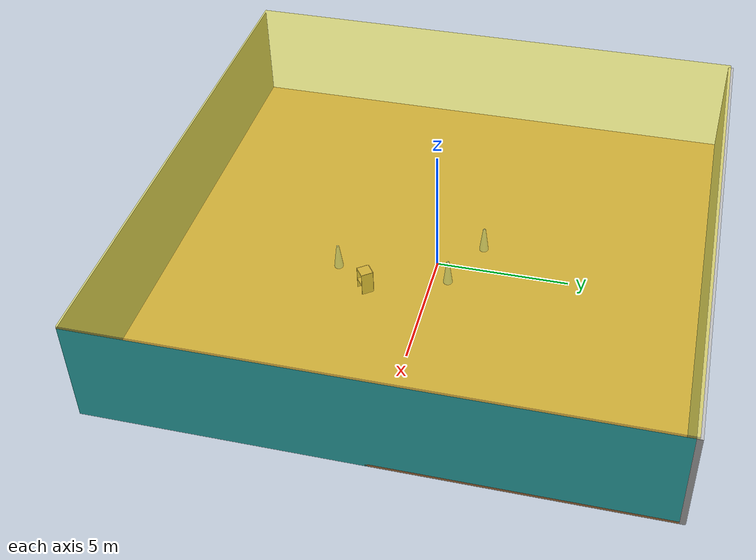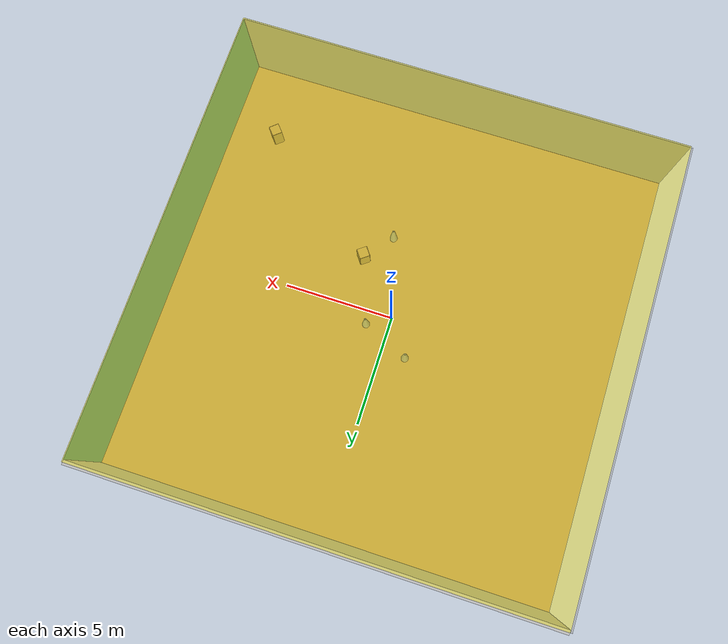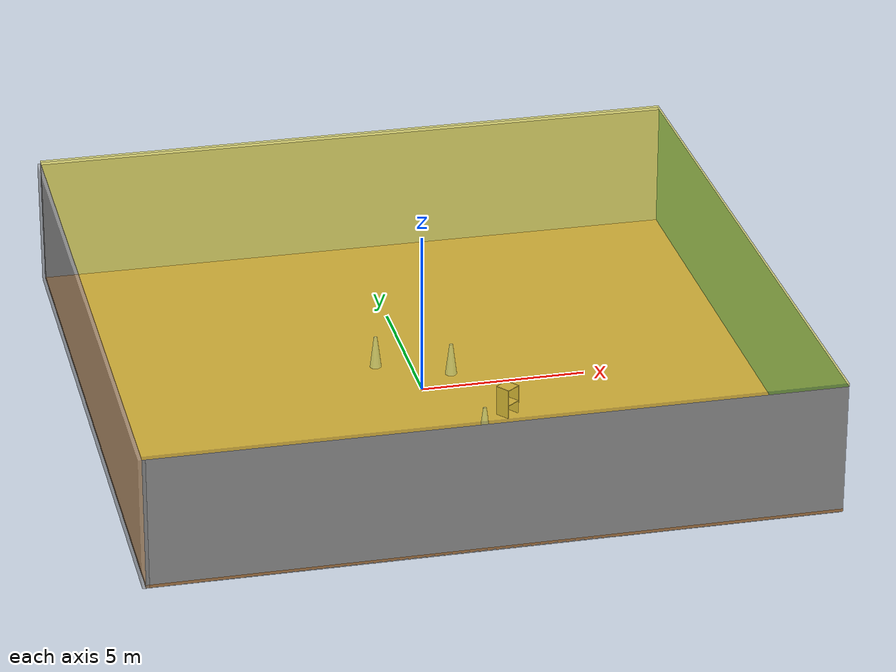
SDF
<sdf version="1.4">
 <world name="default">
  <physics type="ode">
   <max_step_size>0.001</max_step_size>
   <real_time_factor>1</real_time_factor>
   <real_time_update_rate>1000</real_time_update_rate>
   <gravity>0 0 -9.8</gravity>
  </physics>
  <scene><ambient>0.4 0.4 0.4 1</ambient><background>0.7 0.7 0.7 1</background><shadows>1</shadows></scene>
  <model name="Surrounding">
   <static>1</static>
   <link name="Ceiling">
    <collision name="Ceiling_Collision"><geometry><box><size>20 20 0.1</size></box></geometry></collision>
    <visual name="Ceiling_Visual">
     <geometry><box><size>20 20 0.1</size></box></geometry>
     <material>
      <script>
       <uri>file://media/materials/scripts/gazebo.material</uri>
       <name>Gazebo/YellowTransparent</name>
      </script>
     </material>
    </visual>
    <pose>0 0 4.05 0 0 0</pose>
   </link>
   <link name="Wall_South">
    <collision name="Wall_South_Collision">
     <geometry><box><size>20 0 4</size></box></geometry>
     <pose>0 0 2 0 -0 0</pose>
    </collision>
    <visual name="Wall_South_Visual">
     <pose>0 0 2 0 -0 0</pose>
     <geometry><box><size>20 0 4</size></box></geometry>
     <material>
      <script><uri>file://media/materials/scripts/gazebo.material</uri><name>Gazebo/GreyGradientSky</name></script>
     </material>
    </visual>
    <velocity_decay><linear>0</linear><angular>0</angular></velocity_decay>
    <pose>0 -10 0 0 -0 0</pose>
   </link>
   <link name="Wall_East">
    <collision name="Wall_21_Collision">
     <geometry><box><size>20 0 4</size></box></geometry>
     <pose>0 0 2 0 -0 0</pose>
    </collision>
    <visual name="Wall_21_Visual">
     <pose>0 0 2 0 -0 0</pose>
     <geometry><box><size>20 0 4</size></box></geometry>
     <material>
      <script><uri>file://media/materials/scripts/gazebo.material</uri><name>Gazebo/Turquoise</name></script>
     </material>
    </visual>
    <velocity_decay><linear>0</linear><angular>0</angular></velocity_decay>
    <pose>10 0 0 0 -0 1.5708</pose>
   </link>
   <link name="Wall_North">
    <collision name="Wall_22_Collision">
     <geometry><box><size>20 0.2 4</size></box></geometry>
     <pose>0 0 2 0 -0 0</pose>
    </collision>
    <visual name="Wall_22_Visual">
     <pose>0 0 2 0 -0 0</pose>
     <geometry><box><size>20 0.2 4</size></box></geometry>
     <material>
      <script><uri>file://media/materials/scripts/gazebo.material</uri><name>Gazebo/JointAnchor</name></script>
     </material>
    </visual>
    <velocity_decay><linear>0</linear><angular>0</angular></velocity_decay>
    <pose>0 10 0 0 -0 0</pose>
   </link>
   <link name="Wall_West">
    <collision name="Wall_23_Collision">
     <geometry><box><size>20 0.2 4</size></box></geometry>
     <pose>0 0 2 0 -0 0</pose>
    </collision>
    <visual name="Wall_23_Visual">
     <pose>0 0 2 0 -0 0</pose>
     <geometry><box><size>20 0.2 4</size></box></geometry>
     <material>
      <script><uri>file://media/materials/scripts/gazebo.material</uri><name>Gazebo/GreyTransparent</name></script>
     </material>
    </visual>
    <velocity_decay><linear>0</linear><angular>0</angular></velocity_decay>
    <pose>-10 0 0 0 0 -1.5708</pose>
   </link>
   <link name="Ground_link">
    <collision name="collision">
     <pose>0 0 .05 0 -0 0</pose>
     <geometry><box><size>20 20 0.1</size></box></geometry>
    </collision>
    <visual name="visual">
     <pose>0 0 .05 0 -0 0</pose>
     <geometry><box><size>20 20 0.1</size></box></geometry>
     <material>
      <script><uri>file://media/materials/scripts/gazebo.material</uri><name>Gazebo/WoodFloor</name></script>
     </material>
    </visual>
   </link>
   <static>1</static>
  </model>
  <spherical_coordinates>
   <surface_model>EARTH_WGS84</surface_model>
   <latitude_deg>0</latitude_deg>
   <longitude_deg>0</longitude_deg>
   <elevation>0</elevation>
   <heading_deg>0</heading_deg>
  </spherical_coordinates>
  <light name="lightball_0" type="diffuse">
   <diffuse>0.8 0.8 0.8 1</diffuse>
   <specular>0.2 0.2 0.2 1</specular>
   <attenuation>
    <range>100</range>
    <constant>0.7</constant>
    <linear>0.01</linear>
    <quadratic>0.001</quadratic>
   </attenuation>
   <direction>-0.5 0.1 -0.9</direction>
   <pose>2.52857925631 5.04661343804 2.74419844266 0 0 0</pose>
  </light>
  <light name="lightball_1" type="diffuse">
   <diffuse>0.8 0.8 0.8 1</diffuse>
   <specular>0.2 0.2 0.2 1</specular>
   <attenuation>
    <range>100</range>
    <constant>0.7</constant>
    <linear>0.01</linear>
    <quadratic>0.001</quadratic>
   </attenuation>
   <direction>-0.5 0.1 -0.9</direction>
   <pose>-2.8373993188 6.8671987612 2.30256610514 0 0 0</pose>
  </light>
  <light name="lightball_2" type="diffuse">
   <diffuse>0.8 0.8 0.8 1</diffuse>
   <specular>0.2 0.2 0.2 1</specular>
   <attenuation>
    <range>100</range>
    <constant>0.7</constant>
    <linear>0.01</linear>
    <quadratic>0.001</quadratic>
   </attenuation>
   <direction>-0.5 0.1 -0.9</direction>
   <pose>9.06190737568 -8.87202244169 3.48320149879 0 0 0</pose>
  </light>
  <light name="lightball_3" type="diffuse">
   <diffuse>0.8 0.8 0.8 1</diffuse>
   <specular>0.2 0.2 0.2 1</specular>
   <attenuation>
    <range>100</range>
    <constant>0.7</constant>
    <linear>0.01</linear>
    <quadratic>0.001</quadratic>
   </attenuation>
   <direction>-0.5 0.1 -0.9</direction>
   <pose>-3.2272082813 9.98150360751 1.58193659633 0 0 0</pose>
  </light>
  <light name="lightball_4" type="diffuse">
   <diffuse>0.8 0.8 0.8 1</diffuse>
   <specular>0.2 0.2 0.2 1</specular>
   <attenuation>
    <range>100</range>
    <constant>0.7</constant>
    <linear>0.01</linear>
    <quadratic>0.001</quadratic>
   </attenuation>
   <direction>-0.5 0.1 -0.9</direction>
   <pose>2.17882673263 0.424351142863 2.12916471251 0 0 0</pose>
  </light>
  <light name="lightball_5" type="diffuse">
   <diffuse>0.8 0.8 0.8 1</diffuse>
   <specular>0.2 0.2 0.2 1</specular>
   <attenuation>
    <range>100</range>
    <constant>0.7</constant>
    <linear>0.01</linear>
    <quadratic>0.001</quadratic>
   </attenuation>
   <direction>-0.5 0.1 -0.9</direction>
   <pose>-4.09112716771 0.492832008713 2.39770496323 0 0 0</pose>
  </light>
  <include>
   <uri>model://construction_cone</uri>
   <pose>-1.10477705089 1.57480184051 0 0 0 0.998686687196</pose>
  </include>
  <include>
   <uri>model://construction_cone</uri>
   <pose>1.06506598916 -3.60824027236 0 0 0 0.100592354655</pose>
  </include>
  <include><uri>model://cabinet</uri><pose>2.07392801977 -2.28078532708 0 0 0 2.21350604573</pose></include>
  <include>
   <uri>model://construction_cone</uri>
   <pose>1.02161771368 0.620190608196 0 0 0 0.199453675911</pose>
  </include>
  <include><uri>model://cabinet</uri><pose>7.82233117703 -6.70559424038 0 0 0 0.712152899053</pose></include>
 </world>
</sdf>

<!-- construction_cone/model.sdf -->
<sdf version="1.5">
  <model name="Construction Cone">
    <link name="link">
      <collision name="collision">
        <geometry>
          <mesh>
            <scale>10 10 10</scale>
            <uri>file://isr-testbed/construction_cone/meshes/construction_cone.dae</uri>
          </mesh>
        </geometry>
      </collision>
      <visual name="visual">
        <geometry>
          <mesh>
            <scale>10 10 10</scale>
            <uri>file://isr-testbed/construction_cone/meshes/construction_cone.dae</uri>
          </mesh>
        </geometry>
      </visual>
    </link>
  </model>
</sdf>

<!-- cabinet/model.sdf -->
<sdf version="1.5">
  <model name="cabinet">
    <static>true</static>
    <link name="cabinet_bottom_plate">
      <inertial>
        <pose>0 0 -1 0 0 0</pose>
        <inertia>
          <ixx>2.050000</ixx>
          <ixy>0</ixy>
          <ixz>0</ixz>
          <iyy>2.050000</iyy>
          <iyz>0</iyz>
          <izz>2.050000</izz>
        </inertia>
        <mass>25.000000</mass>
      </inertial>
      <collision name="cabinet_bottom_plate_geom">
        <pose>0 0 0.010000 0 0 0</pose>
        <geometry>
          <box>
            <size>0.450000 0.450000 0.020000</size>
          </box>
        </geometry>
      </collision>
      <visual name="cabinet_bottom_plate_geom_visual">
        <pose>0 0 0.010000 0 0 0</pose>
        <geometry>
          <box>
            <size>0.450000 0.450000 0.020000</size>
          </box>
        </geometry>
        <material>
          <script>
            <uri>model://media/materials/scripts/gazebo.material</uri>
            <name>Gazebo/Wood</name>
          </script>
        </material>
      </visual>
      <collision name="cabinet_bottom_plate_geom_cabinet_back_plate">
        <pose>0.235000 0 0.510000 0 0 0</pose>
        <geometry>
          <box>
            <size>0.020000 0.450000 1.020000</size>
          </box>
        </geometry>
      </collision>
      <visual name="cabinet_bottom_plate_geom_cabinet_back_plate_visual">
        <pose>0.235000 0 0.510000 0 0 0</pose>
        <geometry>
          <box>
            <size>0.020000 0.450000 1.020000</size>
          </box>
        </geometry>
        <material>
          <script>
            <uri>model://media/materials/scripts/gazebo.material</uri>
            <name>Gazebo/Wood</name>
          </script>
        </material>
      </visual>
      <collision name="cabinet_bottom_plate_geom_cabinet_left_plate">
        <pose>0 0.235000 0.510000 0 0 0</pose>
        <geometry>
          <box>
            <size>0.450000 0.020000 1.020000</size>
          </box>
        </geometry>
      </collision>
      <visual name="cabinet_bottom_plate_geom_cabinet_left_plate_visual">
        <pose>0 0.235000 0.510000 0 0 0</pose>
        <geometry>
          <box>
            <size>0.450000 0.020000 1.020000</size>
          </box>
        </geometry>
        <material>
          <script>
            <uri>model://media/materials/scripts/gazebo.material</uri>
            <name>Gazebo/Wood</name>
          </script>
        </material>
      </visual>
      <collision name="cabinet_bottom_plate_geom_cabinet_middle_plate">
        <pose>0 0 0.510000 0 0 0</pose>
        <geometry>
          <box>
            <size>0.450000 0.450000 0.020000</size>
          </box>
        </geometry>
      </collision>
      <visual name="cabinet_bottom_plate_geom_cabinet_middle_plate_visual">
        <pose>0 0 0.510000 0 0 0</pose>
        <geometry>
          <box>
            <size>0.450000 0.450000 0.020000</size>
          </box>
        </geometry>
        <material>
          <script>
            <uri>model://media/materials/scripts/gazebo.material</uri>
            <name>Gazebo/Wood</name>
          </script>
        </material>
      </visual>
      <collision name="cabinet_bottom_plate_geom_cabinet_right_plate">
        <pose>0 -0.235000 0.510000 0 0 0</pose>
        <geometry>
          <box>
            <size>0.450000 0.020000 1.020000</size>
          </box>
        </geometry>
      </collision>
      <visual name="cabinet_bottom_plate_geom_cabinet_right_plate_visual">
        <pose>0 -0.235000 0.510000 0 0 0</pose>
        <geometry>
          <box>
            <size>0.450000 0.020000 1.020000</size>
          </box>
        </geometry>
        <material>
          <script>
            <uri>model://media/materials/scripts/gazebo.material</uri>
            <name>Gazebo/Wood</name>
          </script>
        </material>
      </visual>
      <collision name="cabinet_bottom_plate_geom_cabinet_top_plate">
        <pose>0 0 1.010000 0 0 0</pose>
        <geometry>
          <box>
            <size>0.450000 0.450000 0.020000</size>
          </box>
        </geometry>
      </collision>
      <visual name="cabinet_bottom_plate_geom_cabinet_top_plate_visual">
        <pose>0 0 1.010000 0 0 0</pose>
        <geometry>
          <box>
            <size>0.450000 0.450000 0.020000</size>
          </box>
        </geometry>
        <material>
          <script>
            <uri>model://media/materials/scripts/gazebo.material</uri>
            <name>Gazebo/Wood</name>
          </script>
        </material>
      </visual>
    </link>
  </model>
</sdf>
